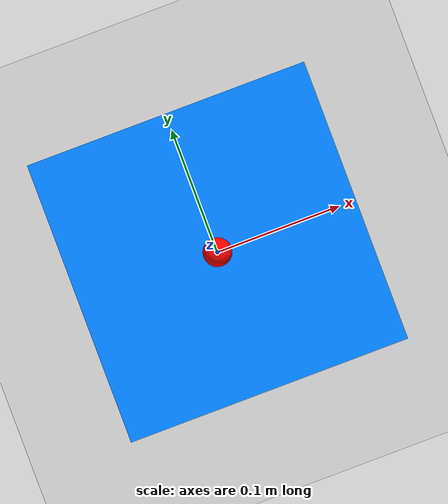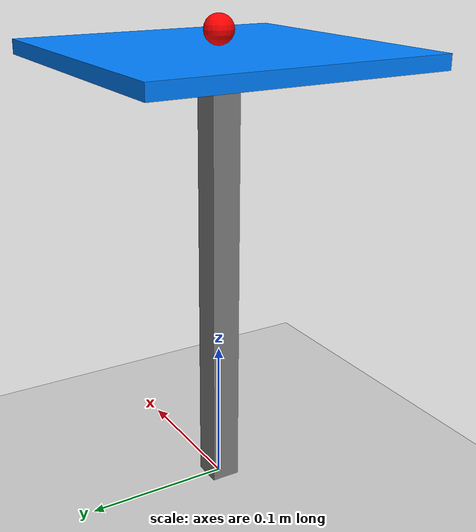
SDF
<?xml version="1.0" ?>
<sdf version="1.8">
  <world name="ball_world">

    <!-- 物理エンジンの設定 -->
    <physics name="1ms" type="ignored">
      <max_step_size>0.001</max_step_size>
      <real_time_factor>1.0</real_time_factor>
    </physics>

    <!-- プラグインのロード -->
    <plugin
      filename="gz-sim-physics-system"
      name="gz::sim::systems::Physics">
    </plugin>
    <plugin
      filename="gz-sim-user-commands-system"
      name="gz::sim::systems::UserCommands">
    </plugin>
    <plugin
      filename="gz-sim-scene-broadcaster-system"
      name="gz::sim::systems::SceneBroadcaster">
    </plugin>

    <!-- 環境光 -->
    <light type="directional" name="sun">
      <cast_shadows>true</cast_shadows>
      <pose>0 0 10 0 0 0</pose>
      <diffuse>0.8 0.8 0.8 1</diffuse>
      <specular>0.2 0.2 0.2 1</specular>
      <attenuation>
        <range>1000</range>
        <constant>0.9</constant>
        <linear>0.01</linear>
        <quadratic>0.001</quadratic>
      </attenuation>
      <direction>-0.5 0.1 -0.9</direction>
    </light>

    <!-- 地面 -->
    <model name="ground_plane">
      <static>true</static>
      <link name="link">
        <collision name="collision">
          <geometry>
            <plane>
              <normal>0 0 1</normal>
              <size>100 100</size>
            </plane>
          </geometry>
        </collision>
        <visual name="visual">
          <geometry>
            <plane>
              <normal>0 0 1</normal>
              <size>100 100</size>
            </plane>
          </geometry>
          <material>
            <ambient>0.8 0.8 0.8 1</ambient>
            <diffuse>0.8 0.8 0.8 1</diffuse>
            <specular>0.8 0.8 0.8 1</specular>
          </material>
        </visual>
      </link>
    </model>

    <!-- 傾斜板システム -->
    <model name="tilting_platform">
      <!-- 固定支柱 -->
      <link name="support">
        <pose>0 0 0.15 0 0 0</pose>
        <inertial>
          <mass>10.0</mass>
          <inertia>
            <ixx>1.0</ixx>
            <iyy>1.0</iyy>
            <izz>1.0</izz>
          </inertia>
        </inertial>
        <collision name="support_collision">
          <geometry>
            <box>
              <size>0.02 0.02 0.3</size>
            </box>
          </geometry>
        </collision>
        <visual name="support_visual">
          <geometry>
            <box>
              <size>0.02 0.02 0.3</size>
            </box>
          </geometry>
          <material>
            <ambient>0.5 0.5 0.5 0</ambient>
            <diffuse>0.5 0.5 0.5 0</diffuse>
          </material>
        </visual>
      </link>

      <!-- X軸回転用の中間リンク -->
      <link name="x_rotation_link">
        <pose>0 0 0.3 0 0 0</pose>
        <inertial>
          <mass>0.1</mass>
          <inertia>
            <ixx>0.01</ixx>
            <iyy>0.01</iyy>
            <izz>0.01</izz>
          </inertia>
        </inertial>
      </link>

      <!-- 傾斜板 -->
      <link name="platform">
        <pose>0 0 0.305 0 0 0</pose>
        <inertial>
          <mass>1.0</mass>
          <inertia>
            <ixx>0.033</ixx>
            <iyy>0.033</iyy>
            <izz>0.066</izz>
          </inertia>
        </inertial>
        <collision name="platform_collision">
          <geometry>
            <box>
              <size>0.2 0.2 0.01</size>
            </box>
          </geometry>
        </collision>
        <visual name="platform_visual">
          <geometry>
            <box>
              <size>0.2 0.2 0.01</size>
            </box>
          </geometry>
          <material>
            <ambient>0 0.5 1 1</ambient>
            <diffuse>0 0.5 1 1</diffuse>
            <specular>0.1 0.1 0.1 1</specular>
          </material>
        </visual>
      </link>

      <!-- 支柱を地面に固定 -->
      <joint name="support_fixed" type="fixed">
        <parent>world</parent>
        <child>support</child>
        <pose>0 0 0 0 0 0</pose>
      </joint>

      <!-- X軸回転ジョイント -->
      <joint name="x_rotation" type="revolute">
        <parent>support</parent>
        <child>x_rotation_link</child>
        <pose>0 0 0 0 0 0</pose>
        <axis>
          <xyz>1 0 0</xyz>
          <limit>
            <lower>-0.785</lower>
            <upper>0.785</upper>
          </limit>
        </axis>
      </joint>

      <!-- Y軸回転ジョイント -->
      <joint name="y_rotation" type="revolute">
        <parent>x_rotation_link</parent>
        <child>platform</child>
        <pose>0 0 0 0 0 0</pose>
        <axis>
          <xyz>0 1 0</xyz>
          <limit>
            <lower>-0.785</lower>
            <upper>0.785</upper>
          </limit>
        </axis>
      </joint>

      <!-- X軸ジョイント位置制御プラグイン -->
      <plugin filename="gz-sim-joint-position-controller-system"
              name="gz::sim::systems::JointPositionController">
        <joint_name>x_rotation</joint_name>
        <topic>/joint_commands</topic>
        <p_gain>10</p_gain>
        <i_gain>0.1</i_gain>
        <d_gain>1</d_gain>
      </plugin>

      <!-- Y軸ジョイント位置制御プラグイン -->
      <plugin filename="gz-sim-joint-position-controller-system"
              name="gz::sim::systems::JointPositionController">
        <joint_name>y_rotation</joint_name>
        <topic>/joint_commands_y</topic>
        <p_gain>10</p_gain>
        <i_gain>0.1</i_gain>
        <d_gain>1</d_gain>
      </plugin>

      <!-- ジョイント状態パブリッシャープラグイン -->
      <plugin filename="gz-sim-joint-state-publisher-system"
              name="gz::sim::systems::JointStatePublisher">
      </plugin>

    </model>

    <!-- ボール -->
    <model name="ball">
      <pose>0 0 0.32 0 0 0</pose>
      <link name="ball_link">
        <inertial>
          <mass>0.01</mass>
          <inertia>
            <ixx>0.000016</ixx>
            <iyy>0.000016</iyy>
            <izz>0.000016</izz>
          </inertia>
        </inertial>
        <collision name="ball_collision">
          <geometry>
            <sphere>
              <radius>0.01</radius>
            </sphere>
          </geometry>
        </collision>
        <visual name="ball_visual">
          <geometry>
            <sphere>
              <radius>0.01</radius>
            </sphere>
          </geometry>
          <material>
            <ambient>1 0 0 1</ambient>
            <diffuse>1 0 0 1</diffuse>
            <specular>0.1 0.1 0.1 1</specular>
          </material>
        </visual>
      </link>

      <plugin name="gz::sim::systems::PosePublisher" filename="gz-sim-pose-publisher-system">
        <publish_model_pose>true</publish_model_pose>
        <publish_link_pose>false</publish_link_pose>
        <use_pose_vector_msg>false</use_pose_vector_msg>
        <publish_nested_model_pose>true</publish_nested_model_pose>
        <update_frequency>60</update_frequency>
      </plugin>
    </model>

  </world>
</sdf>
